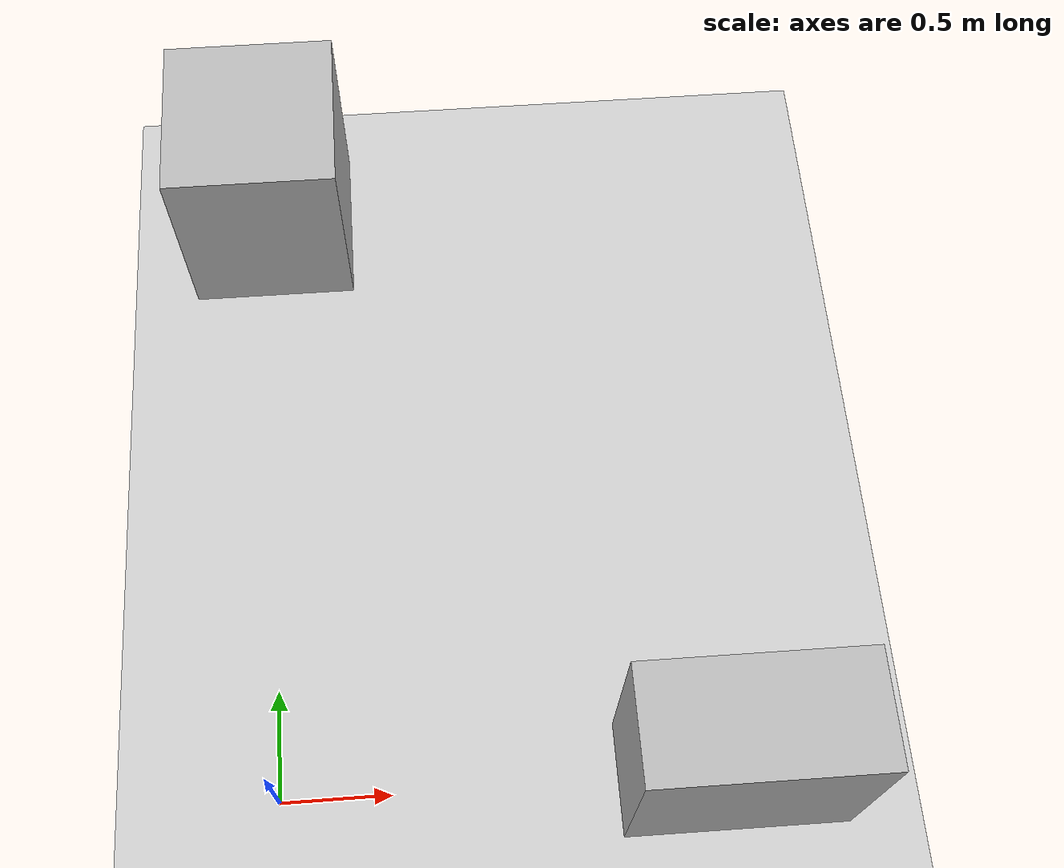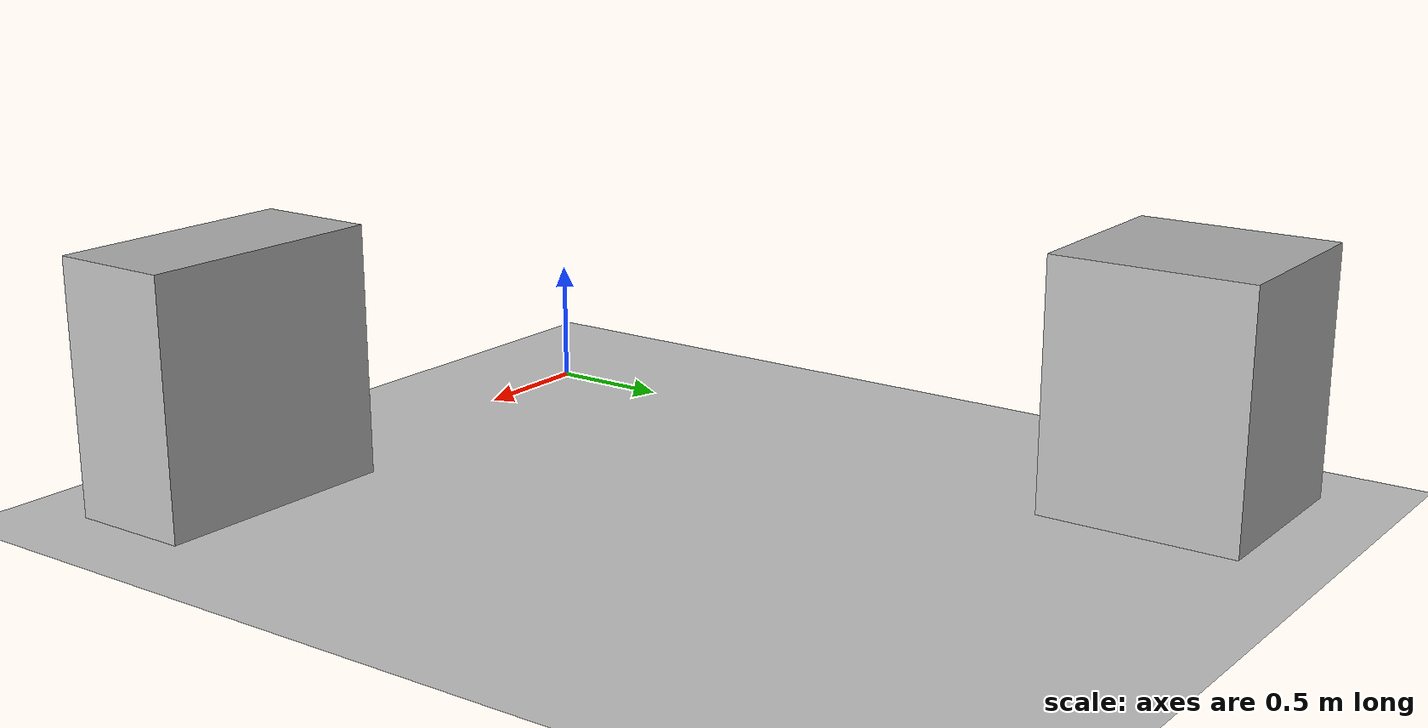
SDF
<?xml version="1.0" ?>
<sdf version="1.6">
  <world name="sniffi_world">
    <include><uri>model://ground_plane</uri></include>
    <include><uri>model://sun</uri></include>

    <!-- Obstacles -->
    <model name="box1">
      <pose>2 0 0.5 0 0 0</pose><static>1</static>
      <link name="link">
        <collision name="collision"><geometry><box><size>1 0.5 1</size></box></geometry></collision>
        <visual name="visual"><geometry><box><size>1 0.5 1</size></box></geometry></visual>
      </link>
    </model>

    <model name="box2">
      <pose>0 3 0.5 0 0 0</pose><static>1</static>
      <link name="link">
        <collision name="collision"><geometry><box><size>0.8 0.8 1</size></box></geometry></collision>
        <visual name="visual"><geometry><box><size>0.8 0.8 1</size></box></geometry></visual>
      </link>
    </model>
  </world>
</sdf>
